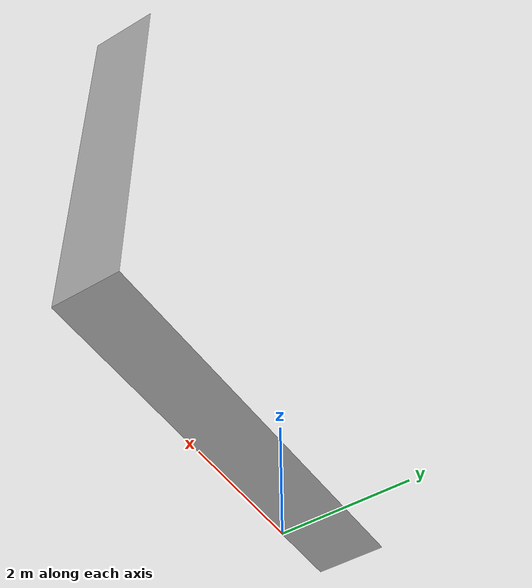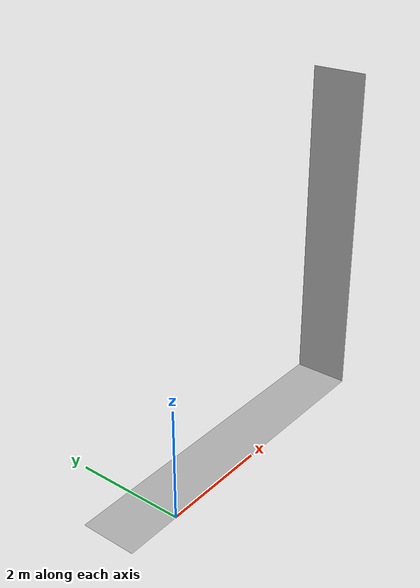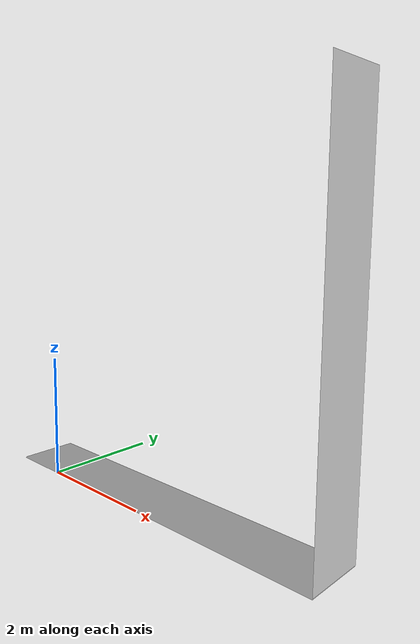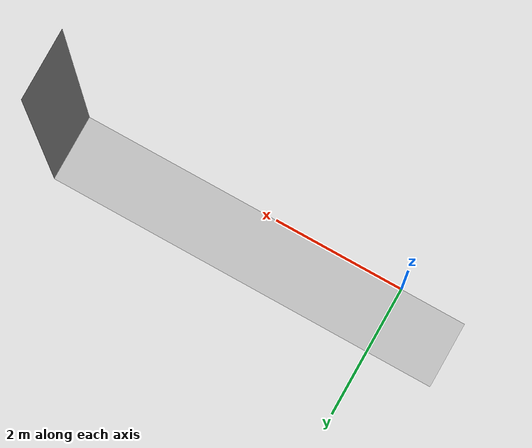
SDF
<?xml version="1.6" ?>
<sdf version="1.6">
  <model name="test_arena_1">
    <static>true</static>
    <link name="link">
      <visual name="visual">
        <geometry>
          <mesh>
            <uri>model://arena3/meshes/arena3.obj</uri>
          </mesh>
        </geometry>
      </visual>
      <collision name="collision">
        <geometry>
          <mesh>
            <uri>model://arena3/meshes/arena3.obj</uri>
          </mesh>
        </geometry>
      </collision>
    </link>
  </model>
</sdf>
